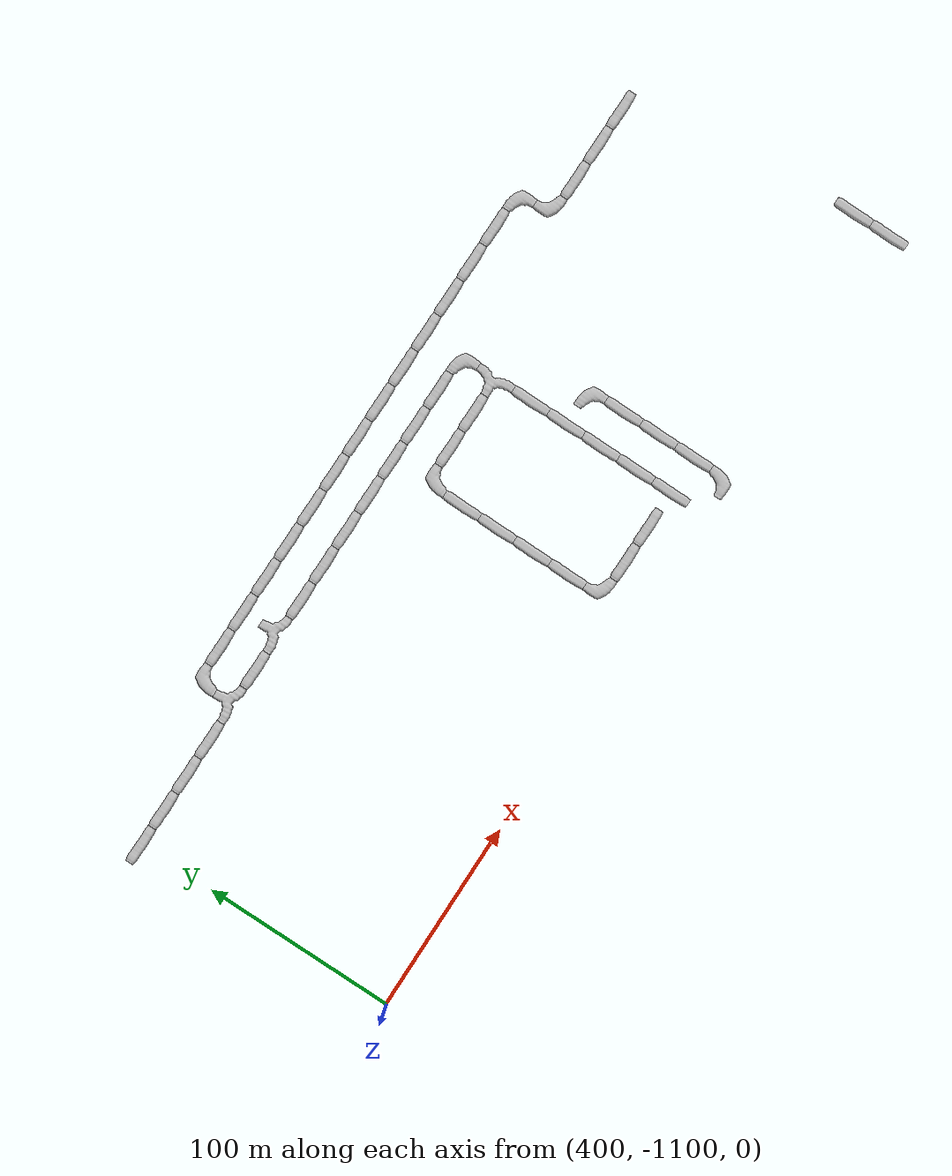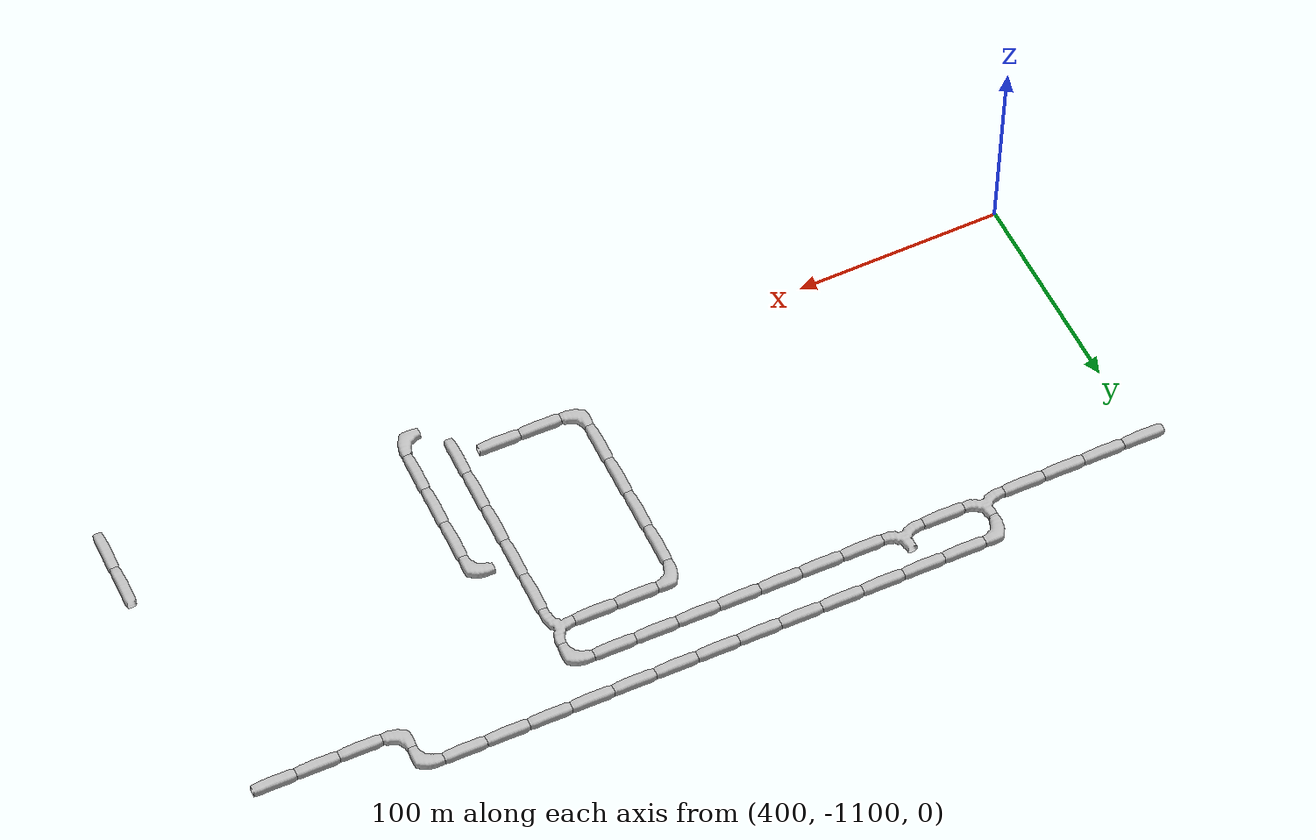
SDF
<sdf version="1.6">
 <world name="cave_32000_16">
  <include>
   <static>true</static>
   <name>cave_42_-55</name>
   <pose>840 -1100 0 0 0 0.0</pose>
   <uri>model://cave_straight_20m</uri>
  </include>
  <include>
   <static>true</static>
   <name>cave_42_-54</name>
   <pose>840 -1080 0 0 0 0.0</pose>
   <uri>model://cave_straight_20m</uri>
  </include>
  <include>
   <static>true</static>
   <name>cave_41_-48</name>
   <pose>820 -960 0 0 0 1.5707963267948966</pose>
   <uri>model://cave_straight_20m</uri>
  </include>
  <include>
   <static>true</static>
   <name>cave_40_-48</name>
   <pose>800 -960 0 0 0 1.5707963267948966</pose>
   <uri>model://cave_straight_20m</uri>
  </include>
  <include>
   <static>true</static>
   <name>cave_39_-48</name>
   <pose>780 -960 0 0 0 1.5707963267948966</pose>
   <uri>model://cave_straight_20m</uri>
  </include>
  <include>
   <static>true</static>
   <name>cave_38_-48</name>
   <pose>760 -960 0 0 0 0.0</pose>
   <uri>model://cave_L_20m</uri>
  </include>
  <include>
   <static>true</static>
   <name>cave_38_-47</name>
   <pose>760 -940 0 0 0 3.141592653589793</pose>
   <uri>model://cave_L_20m</uri>
  </include>
  <include>
   <static>true</static>
   <name>cave_37_-47</name>
   <pose>740 -940 0 0 0 1.5707963267948966</pose>
   <uri>model://cave_straight_20m</uri>
  </include>
  <include>
   <static>true</static>
   <name>cave_36_-47</name>
   <pose>720 -940 0 0 0 1.5707963267948966</pose>
   <uri>model://cave_straight_20m</uri>
  </include>
  <include>
   <static>true</static>
   <name>cave_35_-47</name>
   <pose>700 -940 0 0 0 1.5707963267948966</pose>
   <uri>model://cave_straight_20m</uri>
  </include>
  <include>
   <static>true</static>
   <name>cave_34_-47</name>
   <pose>680 -940 0 0 0 1.5707963267948966</pose>
   <uri>model://cave_straight_20m</uri>
  </include>
  <include>
   <static>true</static>
   <name>cave_33_-47</name>
   <pose>660 -940 0 0 0 1.5707963267948966</pose>
   <uri>model://cave_straight_20m</uri>
  </include>
  <include>
   <static>true</static>
   <name>cave_32_-47</name>
   <pose>640 -940 0 0 0 1.5707963267948966</pose>
   <uri>model://cave_straight_20m</uri>
  </include>
  <include>
   <static>true</static>
   <name>cave_31_-47</name>
   <pose>620 -940 0 0 0 1.5707963267948966</pose>
   <uri>model://cave_straight_20m</uri>
  </include>
  <include>
   <static>true</static>
   <name>cave_30_-47</name>
   <pose>600 -940 0 0 0 1.5707963267948966</pose>
   <uri>model://cave_straight_20m</uri>
  </include>
  <include>
   <static>true</static>
   <name>cave_29_-47</name>
   <pose>580 -940 0 0 0 1.5707963267948966</pose>
   <uri>model://cave_straight_20m</uri>
  </include>
  <include>
   <static>true</static>
   <name>cave_28_-47</name>
   <pose>560 -940 0 0 0 1.5707963267948966</pose>
   <uri>model://cave_straight_20m</uri>
  </include>
  <include>
   <static>true</static>
   <name>cave_27_-47</name>
   <pose>540 -940 0 0 0 1.5707963267948966</pose>
   <uri>model://cave_straight_20m</uri>
  </include>
  <include>
   <static>true</static>
   <name>cave_26_-47</name>
   <pose>520 -940 0 0 0 1.5707963267948966</pose>
   <uri>model://cave_straight_20m</uri>
  </include>
  <include>
   <static>true</static>
   <name>cave_25_-47</name>
   <pose>500 -940 0 0 0 1.5707963267948966</pose>
   <uri>model://cave_straight_20m</uri>
  </include>
  <include>
   <static>true</static>
   <name>cave_24_-47</name>
   <pose>480 -940 0 0 0 -1.5707963267948966</pose>
   <uri>model://cave_L_20m</uri>
  </include>
  <include>
   <static>true</static>
   <name>cave_24_-48</name>
   <pose>480 -960 0 0 0 0.0</pose>
   <uri>model://cave_3way_20m</uri>
  </include>
  <include>
   <static>true</static>
   <name>cave_25_-48</name>
   <pose>500 -960 0 0 0 1.5707963267948966</pose>
   <uri>model://cave_straight_20m</uri>
  </include>
  <include>
   <static>true</static>
   <name>cave_26_-48</name>
   <pose>520 -960 0 0 0 0.0</pose>
   <uri>model://cave_3way_20m</uri>
  </include>
  <include>
   <static>true</static>
   <name>cave_27_-48</name>
   <pose>540 -960 0 0 0 1.5707963267948966</pose>
   <uri>model://cave_straight_20m</uri>
  </include>
  <include>
   <static>true</static>
   <name>cave_28_-48</name>
   <pose>560 -960 0 0 0 1.5707963267948966</pose>
   <uri>model://cave_straight_20m</uri>
  </include>
  <include>
   <static>true</static>
   <name>cave_29_-48</name>
   <pose>580 -960 0 0 0 1.5707963267948966</pose>
   <uri>model://cave_straight_20m</uri>
  </include>
  <include>
   <static>true</static>
   <name>cave_30_-48</name>
   <pose>600 -960 0 0 0 1.5707963267948966</pose>
   <uri>model://cave_straight_20m</uri>
  </include>
  <include>
   <static>true</static>
   <name>cave_31_-48</name>
   <pose>620 -960 0 0 0 1.5707963267948966</pose>
   <uri>model://cave_straight_20m</uri>
  </include>
  <include>
   <static>true</static>
   <name>cave_32_-48</name>
   <pose>640 -960 0 0 0 1.5707963267948966</pose>
   <uri>model://cave_straight_20m</uri>
  </include>
  <include>
   <static>true</static>
   <name>cave_33_-48</name>
   <pose>660 -960 0 0 0 1.5707963267948966</pose>
   <uri>model://cave_straight_20m</uri>
  </include>
  <include>
   <static>true</static>
   <name>cave_34_-48</name>
   <pose>680 -960 0 0 0 3.141592653589793</pose>
   <uri>model://cave_L_20m</uri>
  </include>
  <include>
   <static>true</static>
   <name>cave_34_-49</name>
   <pose>680 -980 0 0 0 1.5707963267948966</pose>
   <uri>model://cave_3way_20m</uri>
  </include>
  <include>
   <static>true</static>
   <name>cave_34_-50</name>
   <pose>680 -1000 0 0 0 0.0</pose>
   <uri>model://cave_straight_20m</uri>
  </include>
  <include>
   <static>true</static>
   <name>cave_34_-51</name>
   <pose>680 -1020 0 0 0 0.0</pose>
   <uri>model://cave_straight_20m</uri>
  </include>
  <include>
   <static>true</static>
   <name>cave_34_-52</name>
   <pose>680 -1040 0 0 0 0.0</pose>
   <uri>model://cave_straight_20m</uri>
  </include>
  <include>
   <static>true</static>
   <name>cave_34_-53</name>
   <pose>680 -1060 0 0 0 0.0</pose>
   <uri>model://cave_straight_20m</uri>
  </include>
  <include>
   <static>true</static>
   <name>cave_34_-54</name>
   <pose>680 -1080 0 0 0 0.0</pose>
   <uri>model://cave_straight_20m</uri>
  </include>
  <include>
   <static>true</static>
   <name>cave_35_-55</name>
   <pose>700 -1100 0 0 0 1.5707963267948966</pose>
   <uri>model://cave_L_20m</uri>
  </include>
  <include>
   <static>true</static>
   <name>cave_35_-54</name>
   <pose>700 -1080 0 0 0 0.0</pose>
   <uri>model://cave_straight_20m</uri>
  </include>
  <include>
   <static>true</static>
   <name>cave_35_-53</name>
   <pose>700 -1060 0 0 0 0.0</pose>
   <uri>model://cave_straight_20m</uri>
  </include>
  <include>
   <static>true</static>
   <name>cave_35_-52</name>
   <pose>700 -1040 0 0 0 0.0</pose>
   <uri>model://cave_straight_20m</uri>
  </include>
  <include>
   <static>true</static>
   <name>cave_35_-51</name>
   <pose>700 -1020 0 0 0 3.141592653589793</pose>
   <uri>model://cave_L_20m</uri>
  </include>
  <include>
   <static>true</static>
   <name>cave_33_-49</name>
   <pose>660 -980 0 0 0 1.5707963267948966</pose>
   <uri>model://cave_straight_20m</uri>
  </include>
  <include>
   <static>true</static>
   <name>cave_32_-49</name>
   <pose>640 -980 0 0 0 1.5707963267948966</pose>
   <uri>model://cave_straight_20m</uri>
  </include>
  <include>
   <static>true</static>
   <name>cave_31_-49</name>
   <pose>620 -980 0 0 0 -1.5707963267948966</pose>
   <uri>model://cave_L_20m</uri>
  </include>
  <include>
   <static>true</static>
   <name>cave_31_-50</name>
   <pose>620 -1000 0 0 0 0.0</pose>
   <uri>model://cave_straight_20m</uri>
  </include>
  <include>
   <static>true</static>
   <name>cave_31_-51</name>
   <pose>620 -1020 0 0 0 0.0</pose>
   <uri>model://cave_straight_20m</uri>
  </include>
  <include>
   <static>true</static>
   <name>cave_31_-52</name>
   <pose>620 -1040 0 0 0 0.0</pose>
   <uri>model://cave_straight_20m</uri>
  </include>
  <include>
   <static>true</static>
   <name>cave_31_-53</name>
   <pose>620 -1060 0 0 0 0.0</pose>
   <uri>model://cave_straight_20m</uri>
  </include>
  <include>
   <static>true</static>
   <name>cave_31_-54</name>
   <pose>620 -1080 0 0 0 0.0</pose>
   <uri>model://cave_L_20m</uri>
  </include>
  <include>
   <static>true</static>
   <name>cave_32_-54</name>
   <pose>640 -1080 0 0 0 1.5707963267948966</pose>
   <uri>model://cave_straight_20m</uri>
  </include>
  <include>
   <static>true</static>
   <name>cave_33_-54</name>
   <pose>660 -1080 0 0 0 1.5707963267948966</pose>
   <uri>model://cave_straight_20m</uri>
  </include>
  <include>
   <static>true</static>
   <name>cave_23_-48</name>
   <pose>460 -960 0 0 0 1.5707963267948966</pose>
   <uri>model://cave_straight_20m</uri>
  </include>
  <include>
   <static>true</static>
   <name>cave_22_-48</name>
   <pose>440 -960 0 0 0 1.5707963267948966</pose>
   <uri>model://cave_straight_20m</uri>
  </include>
  <include>
   <static>true</static>
   <name>cave_21_-48</name>
   <pose>420 -960 0 0 0 1.5707963267948966</pose>
   <uri>model://cave_straight_20m</uri>
  </include>
  <include>
   <static>true</static>
   <name>cave_20_-48</name>
   <pose>400 -960 0 0 0 1.5707963267948966</pose>
   <uri>model://cave_straight_20m</uri>
  </include>
 </world>
</sdf>
